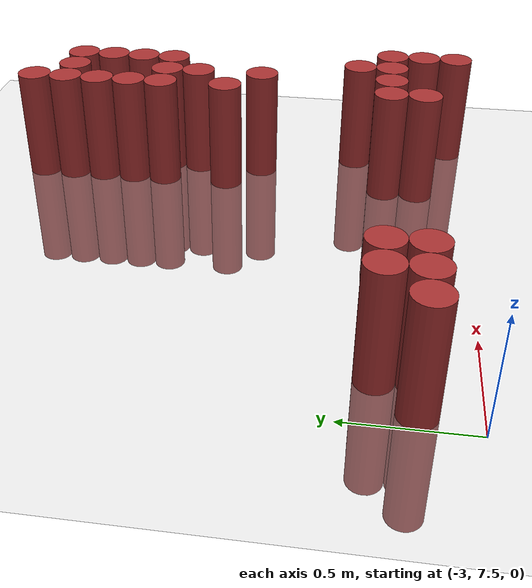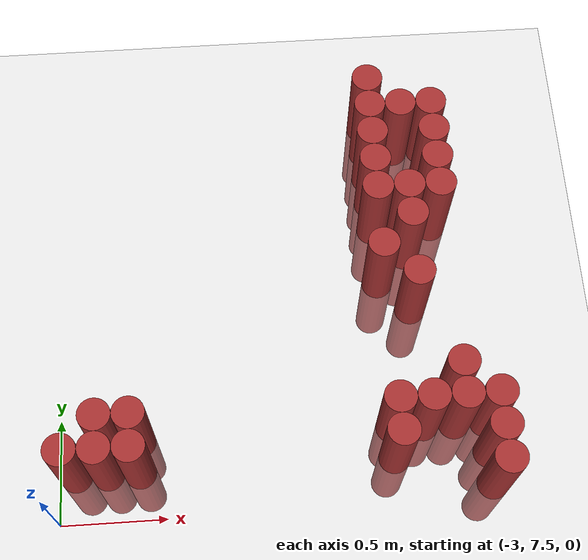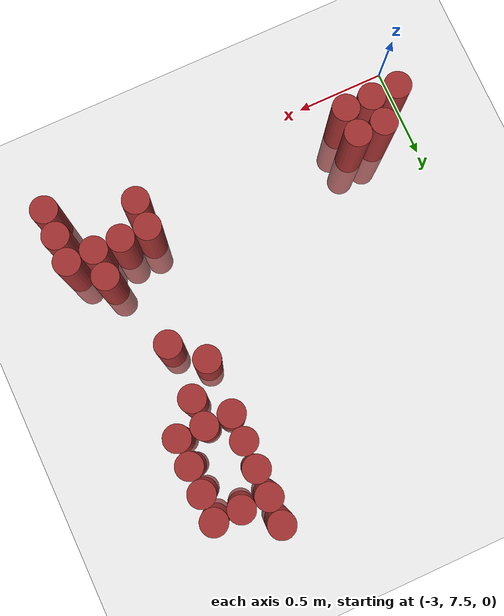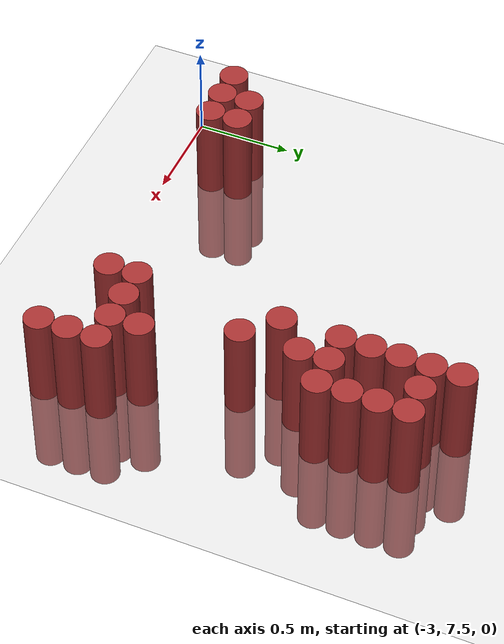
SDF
<sdf version="1.6">
 <world name="default">
  <model name="ground_plane">
   <static>1</static>
   <link name="link">
    <collision name="collision">
     <geometry><plane><normal>0 0 1</normal><size>100 100</size></plane></geometry>
     <surface><friction><ode><mu>100</mu><mu2>50</mu2></ode></friction></surface>
    </collision>
    <visual name="visual">
     <cast_shadows>0</cast_shadows>
     <geometry><plane><normal>0 0 1</normal><size>100 100</size></plane></geometry>
     <material>
      <script><uri>file://media/materials/scripts/gazebo.material</uri><name>Gazebo/Grey</name></script>
     </material>
    </visual>
   </link>
  </model>
  <model name="unit_cylinder_156">
   <static>1</static>
   <pose>-2.925000 7.725000 0.000000 0.000000 0.000000 0.000000</pose>
   <link name="link">
    <inertial>
     <mass>1</mass>
     <inertia><ixx>0.145833</ixx><ixy>0</ixy><ixz>0</ixz><iyy>0.145833</iyy><iyz>0</iyz><izz>0.125</izz></inertia>
    </inertial>
    <collision name="collision">
     <geometry><cylinder><radius>0.075000</radius><length>1</length></cylinder></geometry>
    </collision>
    <visual name="visual">
     <geometry><cylinder><radius>0.075000</radius><length>1</length></cylinder></geometry>
     <material>
      <ambient>0.648000 0.192000 0.192000 1</ambient>
      <diffuse>0.648000 0.192000 0.192000 1</diffuse>
     </material>
     <material>
      <script><name>Gazebo/Grey</name><uri>file://media/materials/scripts/gazebo.material</uri></script>
     </material>
    </visual>
   </link>
  </model>
  <model name="unit_cylinder_160">
   <static>1</static>
   <pose>-2.775000 7.725000 0.000000 0.000000 0.000000 0.000000</pose>
   <link name="link">
    <inertial>
     <mass>1</mass>
     <inertia><ixx>0.145833</ixx><ixy>0</ixy><ixz>0</ixz><iyy>0.145833</iyy><iyz>0</iyz><izz>0.125</izz></inertia>
    </inertial>
    <collision name="collision">
     <geometry><cylinder><radius>0.075000</radius><length>1</length></cylinder></geometry>
    </collision>
    <visual name="visual">
     <geometry><cylinder><radius>0.075000</radius><length>1</length></cylinder></geometry>
     <material>
      <ambient>0.648000 0.192000 0.192000 1</ambient>
      <diffuse>0.648000 0.192000 0.192000 1</diffuse>
     </material>
     <material>
      <script><name>Gazebo/Grey</name><uri>file://media/materials/scripts/gazebo.material</uri></script>
     </material>
    </visual>
   </link>
  </model>
  <model name="unit_cylinder_161">
   <static>1</static>
   <pose>-2.775000 7.875000 0.000000 0.000000 0.000000 0.000000</pose>
   <link name="link">
    <inertial>
     <mass>1</mass>
     <inertia><ixx>0.145833</ixx><ixy>0</ixy><ixz>0</ixz><iyy>0.145833</iyy><iyz>0</iyz><izz>0.125</izz></inertia>
    </inertial>
    <collision name="collision">
     <geometry><cylinder><radius>0.075000</radius><length>1</length></cylinder></geometry>
    </collision>
    <visual name="visual">
     <geometry><cylinder><radius>0.075000</radius><length>1</length></cylinder></geometry>
     <material>
      <ambient>0.648000 0.192000 0.192000 1</ambient>
      <diffuse>0.648000 0.192000 0.192000 1</diffuse>
     </material>
     <material>
      <script><name>Gazebo/Grey</name><uri>file://media/materials/scripts/gazebo.material</uri></script>
     </material>
    </visual>
   </link>
  </model>
  <model name="unit_cylinder_168">
   <static>1</static>
   <pose>-2.625000 7.725000 0.000000 0.000000 0.000000 0.000000</pose>
   <link name="link">
    <inertial>
     <mass>1</mass>
     <inertia><ixx>0.145833</ixx><ixy>0</ixy><ixz>0</ixz><iyy>0.145833</iyy><iyz>0</iyz><izz>0.125</izz></inertia>
    </inertial>
    <collision name="collision">
     <geometry><cylinder><radius>0.075000</radius><length>1</length></cylinder></geometry>
    </collision>
    <visual name="visual">
     <geometry><cylinder><radius>0.075000</radius><length>1</length></cylinder></geometry>
     <material>
      <ambient>0.648000 0.192000 0.192000 1</ambient>
      <diffuse>0.648000 0.192000 0.192000 1</diffuse>
     </material>
     <material>
      <script><name>Gazebo/Grey</name><uri>file://media/materials/scripts/gazebo.material</uri></script>
     </material>
    </visual>
   </link>
  </model>
  <model name="unit_cylinder_169">
   <static>1</static>
   <pose>-2.625000 7.875000 0.000000 0.000000 0.000000 0.000000</pose>
   <link name="link">
    <inertial>
     <mass>1</mass>
     <inertia><ixx>0.145833</ixx><ixy>0</ixy><ixz>0</ixz><iyy>0.145833</iyy><iyz>0</iyz><izz>0.125</izz></inertia>
    </inertial>
    <collision name="collision">
     <geometry><cylinder><radius>0.075000</radius><length>1</length></cylinder></geometry>
    </collision>
    <visual name="visual">
     <geometry><cylinder><radius>0.075000</radius><length>1</length></cylinder></geometry>
     <material>
      <ambient>0.648000 0.192000 0.192000 1</ambient>
      <diffuse>0.648000 0.192000 0.192000 1</diffuse>
     </material>
     <material>
      <script><name>Gazebo/Grey</name><uri>file://media/materials/scripts/gazebo.material</uri></script>
     </material>
    </visual>
   </link>
  </model>
  <model name="unit_cylinder_185">
   <static>1</static>
   <pose>-1.425000 7.725000 0.000000 0.000000 0.000000 0.000000</pose>
   <link name="link">
    <inertial>
     <mass>1</mass>
     <inertia><ixx>0.145833</ixx><ixy>0</ixy><ixz>0</ixz><iyy>0.145833</iyy><iyz>0</iyz><izz>0.125</izz></inertia>
    </inertial>
    <collision name="collision">
     <geometry><cylinder><radius>0.075000</radius><length>1</length></cylinder></geometry>
    </collision>
    <visual name="visual">
     <geometry><cylinder><radius>0.075000</radius><length>1</length></cylinder></geometry>
     <material>
      <ambient>0.648000 0.192000 0.192000 1</ambient>
      <diffuse>0.648000 0.192000 0.192000 1</diffuse>
     </material>
     <material>
      <script><name>Gazebo/Grey</name><uri>file://media/materials/scripts/gazebo.material</uri></script>
     </material>
    </visual>
   </link>
  </model>
  <model name="unit_cylinder_186">
   <static>1</static>
   <pose>-1.425000 7.875000 0.000000 0.000000 0.000000 0.000000</pose>
   <link name="link">
    <inertial>
     <mass>1</mass>
     <inertia><ixx>0.145833</ixx><ixy>0</ixy><ixz>0</ixz><iyy>0.145833</iyy><iyz>0</iyz><izz>0.125</izz></inertia>
    </inertial>
    <collision name="collision">
     <geometry><cylinder><radius>0.075000</radius><length>1</length></cylinder></geometry>
    </collision>
    <visual name="visual">
     <geometry><cylinder><radius>0.075000</radius><length>1</length></cylinder></geometry>
     <material>
      <ambient>0.648000 0.192000 0.192000 1</ambient>
      <diffuse>0.648000 0.192000 0.192000 1</diffuse>
     </material>
     <material>
      <script><name>Gazebo/Grey</name><uri>file://media/materials/scripts/gazebo.material</uri></script>
     </material>
    </visual>
   </link>
  </model>
  <model name="unit_cylinder_187">
   <static>1</static>
   <pose>-1.425000 8.625000 0.000000 0.000000 0.000000 0.000000</pose>
   <link name="link">
    <inertial>
     <mass>1</mass>
     <inertia><ixx>0.145833</ixx><ixy>0</ixy><ixz>0</ixz><iyy>0.145833</iyy><iyz>0</iyz><izz>0.125</izz></inertia>
    </inertial>
    <collision name="collision">
     <geometry><cylinder><radius>0.075000</radius><length>1</length></cylinder></geometry>
    </collision>
    <visual name="visual">
     <geometry><cylinder><radius>0.075000</radius><length>1</length></cylinder></geometry>
     <material>
      <ambient>0.648000 0.192000 0.192000 1</ambient>
      <diffuse>0.648000 0.192000 0.192000 1</diffuse>
     </material>
     <material>
      <script><name>Gazebo/Grey</name><uri>file://media/materials/scripts/gazebo.material</uri></script>
     </material>
    </visual>
   </link>
  </model>
  <model name="unit_cylinder_188">
   <static>1</static>
   <pose>-1.425000 8.925000 0.000000 0.000000 0.000000 0.000000</pose>
   <link name="link">
    <inertial>
     <mass>1</mass>
     <inertia><ixx>0.145833</ixx><ixy>0</ixy><ixz>0</ixz><iyy>0.145833</iyy><iyz>0</iyz><izz>0.125</izz></inertia>
    </inertial>
    <collision name="collision">
     <geometry><cylinder><radius>0.075000</radius><length>1</length></cylinder></geometry>
    </collision>
    <visual name="visual">
     <geometry><cylinder><radius>0.075000</radius><length>1</length></cylinder></geometry>
     <material>
      <ambient>0.648000 0.192000 0.192000 1</ambient>
      <diffuse>0.648000 0.192000 0.192000 1</diffuse>
     </material>
     <material>
      <script><name>Gazebo/Grey</name><uri>file://media/materials/scripts/gazebo.material</uri></script>
     </material>
    </visual>
   </link>
  </model>
  <model name="unit_cylinder_189">
   <static>1</static>
   <pose>-1.425000 9.075000 0.000000 0.000000 0.000000 0.000000</pose>
   <link name="link">
    <inertial>
     <mass>1</mass>
     <inertia><ixx>0.145833</ixx><ixy>0</ixy><ixz>0</ixz><iyy>0.145833</iyy><iyz>0</iyz><izz>0.125</izz></inertia>
    </inertial>
    <collision name="collision">
     <geometry><cylinder><radius>0.075000</radius><length>1</length></cylinder></geometry>
    </collision>
    <visual name="visual">
     <geometry><cylinder><radius>0.075000</radius><length>1</length></cylinder></geometry>
     <material>
      <ambient>0.648000 0.192000 0.192000 1</ambient>
      <diffuse>0.648000 0.192000 0.192000 1</diffuse>
     </material>
     <material>
      <script><name>Gazebo/Grey</name><uri>file://media/materials/scripts/gazebo.material</uri></script>
     </material>
    </visual>
   </link>
  </model>
  <model name="unit_cylinder_190">
   <static>1</static>
   <pose>-1.425000 9.225000 0.000000 0.000000 0.000000 0.000000</pose>
   <link name="link">
    <inertial>
     <mass>1</mass>
     <inertia><ixx>0.145833</ixx><ixy>0</ixy><ixz>0</ixz><iyy>0.145833</iyy><iyz>0</iyz><izz>0.125</izz></inertia>
    </inertial>
    <collision name="collision">
     <geometry><cylinder><radius>0.075000</radius><length>1</length></cylinder></geometry>
    </collision>
    <visual name="visual">
     <geometry><cylinder><radius>0.075000</radius><length>1</length></cylinder></geometry>
     <material>
      <ambient>0.648000 0.192000 0.192000 1</ambient>
      <diffuse>0.648000 0.192000 0.192000 1</diffuse>
     </material>
     <material>
      <script><name>Gazebo/Grey</name><uri>file://media/materials/scripts/gazebo.material</uri></script>
     </material>
    </visual>
   </link>
  </model>
  <model name="unit_cylinder_191">
   <static>1</static>
   <pose>-1.425000 9.375000 0.000000 0.000000 0.000000 0.000000</pose>
   <link name="link">
    <inertial>
     <mass>1</mass>
     <inertia><ixx>0.145833</ixx><ixy>0</ixy><ixz>0</ixz><iyy>0.145833</iyy><iyz>0</iyz><izz>0.125</izz></inertia>
    </inertial>
    <collision name="collision">
     <geometry><cylinder><radius>0.075000</radius><length>1</length></cylinder></geometry>
    </collision>
    <visual name="visual">
     <geometry><cylinder><radius>0.075000</radius><length>1</length></cylinder></geometry>
     <material>
      <ambient>0.648000 0.192000 0.192000 1</ambient>
      <diffuse>0.648000 0.192000 0.192000 1</diffuse>
     </material>
     <material>
      <script><name>Gazebo/Grey</name><uri>file://media/materials/scripts/gazebo.material</uri></script>
     </material>
    </visual>
   </link>
  </model>
  <model name="unit_cylinder_192">
   <static>1</static>
   <pose>-1.425000 9.525000 0.000000 0.000000 0.000000 0.000000</pose>
   <link name="link">
    <inertial>
     <mass>1</mass>
     <inertia><ixx>0.145833</ixx><ixy>0</ixy><ixz>0</ixz><iyy>0.145833</iyy><iyz>0</iyz><izz>0.125</izz></inertia>
    </inertial>
    <collision name="collision">
     <geometry><cylinder><radius>0.075000</radius><length>1</length></cylinder></geometry>
    </collision>
    <visual name="visual">
     <geometry><cylinder><radius>0.075000</radius><length>1</length></cylinder></geometry>
     <material>
      <ambient>0.648000 0.192000 0.192000 1</ambient>
      <diffuse>0.648000 0.192000 0.192000 1</diffuse>
     </material>
     <material>
      <script><name>Gazebo/Grey</name><uri>file://media/materials/scripts/gazebo.material</uri></script>
     </material>
    </visual>
   </link>
  </model>
  <model name="unit_cylinder_195">
   <static>1</static>
   <pose>-1.275000 7.875000 0.000000 0.000000 0.000000 0.000000</pose>
   <link name="link">
    <inertial>
     <mass>1</mass>
     <inertia><ixx>0.145833</ixx><ixy>0</ixy><ixz>0</ixz><iyy>0.145833</iyy><iyz>0</iyz><izz>0.125</izz></inertia>
    </inertial>
    <collision name="collision">
     <geometry><cylinder><radius>0.075000</radius><length>1</length></cylinder></geometry>
    </collision>
    <visual name="visual">
     <geometry><cylinder><radius>0.075000</radius><length>1</length></cylinder></geometry>
     <material>
      <ambient>0.648000 0.192000 0.192000 1</ambient>
      <diffuse>0.648000 0.192000 0.192000 1</diffuse>
     </material>
     <material>
      <script><name>Gazebo/Grey</name><uri>file://media/materials/scripts/gazebo.material</uri></script>
     </material>
    </visual>
   </link>
  </model>
  <model name="unit_cylinder_196">
   <static>1</static>
   <pose>-1.275000 8.475000 0.000000 0.000000 0.000000 0.000000</pose>
   <link name="link">
    <inertial>
     <mass>1</mass>
     <inertia><ixx>0.145833</ixx><ixy>0</ixy><ixz>0</ixz><iyy>0.145833</iyy><iyz>0</iyz><izz>0.125</izz></inertia>
    </inertial>
    <collision name="collision">
     <geometry><cylinder><radius>0.075000</radius><length>1</length></cylinder></geometry>
    </collision>
    <visual name="visual">
     <geometry><cylinder><radius>0.075000</radius><length>1</length></cylinder></geometry>
     <material>
      <ambient>0.648000 0.192000 0.192000 1</ambient>
      <diffuse>0.648000 0.192000 0.192000 1</diffuse>
     </material>
     <material>
      <script><name>Gazebo/Grey</name><uri>file://media/materials/scripts/gazebo.material</uri></script>
     </material>
    </visual>
   </link>
  </model>
  <model name="unit_cylinder_197">
   <static>1</static>
   <pose>-1.275000 8.775000 0.000000 0.000000 0.000000 0.000000</pose>
   <link name="link">
    <inertial>
     <mass>1</mass>
     <inertia><ixx>0.145833</ixx><ixy>0</ixy><ixz>0</ixz><iyy>0.145833</iyy><iyz>0</iyz><izz>0.125</izz></inertia>
    </inertial>
    <collision name="collision">
     <geometry><cylinder><radius>0.075000</radius><length>1</length></cylinder></geometry>
    </collision>
    <visual name="visual">
     <geometry><cylinder><radius>0.075000</radius><length>1</length></cylinder></geometry>
     <material>
      <ambient>0.648000 0.192000 0.192000 1</ambient>
      <diffuse>0.648000 0.192000 0.192000 1</diffuse>
     </material>
     <material>
      <script><name>Gazebo/Grey</name><uri>file://media/materials/scripts/gazebo.material</uri></script>
     </material>
    </visual>
   </link>
  </model>
  <model name="unit_cylinder_198">
   <static>1</static>
   <pose>-1.275000 8.925000 0.000000 0.000000 0.000000 0.000000</pose>
   <link name="link">
    <inertial>
     <mass>1</mass>
     <inertia><ixx>0.145833</ixx><ixy>0</ixy><ixz>0</ixz><iyy>0.145833</iyy><iyz>0</iyz><izz>0.125</izz></inertia>
    </inertial>
    <collision name="collision">
     <geometry><cylinder><radius>0.075000</radius><length>1</length></cylinder></geometry>
    </collision>
    <visual name="visual">
     <geometry><cylinder><radius>0.075000</radius><length>1</length></cylinder></geometry>
     <material>
      <ambient>0.648000 0.192000 0.192000 1</ambient>
      <diffuse>0.648000 0.192000 0.192000 1</diffuse>
     </material>
     <material>
      <script><name>Gazebo/Grey</name><uri>file://media/materials/scripts/gazebo.material</uri></script>
     </material>
    </visual>
   </link>
  </model>
  <model name="unit_cylinder_199">
   <static>1</static>
   <pose>-1.275000 9.375000 0.000000 0.000000 0.000000 0.000000</pose>
   <link name="link">
    <inertial>
     <mass>1</mass>
     <inertia><ixx>0.145833</ixx><ixy>0</ixy><ixz>0</ixz><iyy>0.145833</iyy><iyz>0</iyz><izz>0.125</izz></inertia>
    </inertial>
    <collision name="collision">
     <geometry><cylinder><radius>0.075000</radius><length>1</length></cylinder></geometry>
    </collision>
    <visual name="visual">
     <geometry><cylinder><radius>0.075000</radius><length>1</length></cylinder></geometry>
     <material>
      <ambient>0.648000 0.192000 0.192000 1</ambient>
      <diffuse>0.648000 0.192000 0.192000 1</diffuse>
     </material>
     <material>
      <script><name>Gazebo/Grey</name><uri>file://media/materials/scripts/gazebo.material</uri></script>
     </material>
    </visual>
   </link>
  </model>
  <model name="unit_cylinder_206">
   <static>1</static>
   <pose>-1.125000 7.875000 0.000000 0.000000 0.000000 0.000000</pose>
   <link name="link">
    <inertial>
     <mass>1</mass>
     <inertia><ixx>0.145833</ixx><ixy>0</ixy><ixz>0</ixz><iyy>0.145833</iyy><iyz>0</iyz><izz>0.125</izz></inertia>
    </inertial>
    <collision name="collision">
     <geometry><cylinder><radius>0.075000</radius><length>1</length></cylinder></geometry>
    </collision>
    <visual name="visual">
     <geometry><cylinder><radius>0.075000</radius><length>1</length></cylinder></geometry>
     <material>
      <ambient>0.648000 0.192000 0.192000 1</ambient>
      <diffuse>0.648000 0.192000 0.192000 1</diffuse>
     </material>
     <material>
      <script><name>Gazebo/Grey</name><uri>file://media/materials/scripts/gazebo.material</uri></script>
     </material>
    </visual>
   </link>
  </model>
  <model name="unit_cylinder_207">
   <static>1</static>
   <pose>-1.125000 8.025000 0.000000 0.000000 0.000000 0.000000</pose>
   <link name="link">
    <inertial>
     <mass>1</mass>
     <inertia><ixx>0.145833</ixx><ixy>0</ixy><ixz>0</ixz><iyy>0.145833</iyy><iyz>0</iyz><izz>0.125</izz></inertia>
    </inertial>
    <collision name="collision">
     <geometry><cylinder><radius>0.075000</radius><length>1</length></cylinder></geometry>
    </collision>
    <visual name="visual">
     <geometry><cylinder><radius>0.075000</radius><length>1</length></cylinder></geometry>
     <material>
      <ambient>0.648000 0.192000 0.192000 1</ambient>
      <diffuse>0.648000 0.192000 0.192000 1</diffuse>
     </material>
     <material>
      <script><name>Gazebo/Grey</name><uri>file://media/materials/scripts/gazebo.material</uri></script>
     </material>
    </visual>
   </link>
  </model>
  <model name="unit_cylinder_208">
   <static>1</static>
   <pose>-1.125000 8.925000 0.000000 0.000000 0.000000 0.000000</pose>
   <link name="link">
    <inertial>
     <mass>1</mass>
     <inertia><ixx>0.145833</ixx><ixy>0</ixy><ixz>0</ixz><iyy>0.145833</iyy><iyz>0</iyz><izz>0.125</izz></inertia>
    </inertial>
    <collision name="collision">
     <geometry><cylinder><radius>0.075000</radius><length>1</length></cylinder></geometry>
    </collision>
    <visual name="visual">
     <geometry><cylinder><radius>0.075000</radius><length>1</length></cylinder></geometry>
     <material>
      <ambient>0.648000 0.192000 0.192000 1</ambient>
      <diffuse>0.648000 0.192000 0.192000 1</diffuse>
     </material>
     <material>
      <script><name>Gazebo/Grey</name><uri>file://media/materials/scripts/gazebo.material</uri></script>
     </material>
    </visual>
   </link>
  </model>
  <model name="unit_cylinder_209">
   <static>1</static>
   <pose>-1.125000 9.075000 0.000000 0.000000 0.000000 0.000000</pose>
   <link name="link">
    <inertial>
     <mass>1</mass>
     <inertia><ixx>0.145833</ixx><ixy>0</ixy><ixz>0</ixz><iyy>0.145833</iyy><iyz>0</iyz><izz>0.125</izz></inertia>
    </inertial>
    <collision name="collision">
     <geometry><cylinder><radius>0.075000</radius><length>1</length></cylinder></geometry>
    </collision>
    <visual name="visual">
     <geometry><cylinder><radius>0.075000</radius><length>1</length></cylinder></geometry>
     <material>
      <ambient>0.648000 0.192000 0.192000 1</ambient>
      <diffuse>0.648000 0.192000 0.192000 1</diffuse>
     </material>
     <material>
      <script><name>Gazebo/Grey</name><uri>file://media/materials/scripts/gazebo.material</uri></script>
     </material>
    </visual>
   </link>
  </model>
  <model name="unit_cylinder_210">
   <static>1</static>
   <pose>-1.125000 9.225000 0.000000 0.000000 0.000000 0.000000</pose>
   <link name="link">
    <inertial>
     <mass>1</mass>
     <inertia><ixx>0.145833</ixx><ixy>0</ixy><ixz>0</ixz><iyy>0.145833</iyy><iyz>0</iyz><izz>0.125</izz></inertia>
    </inertial>
    <collision name="collision">
     <geometry><cylinder><radius>0.075000</radius><length>1</length></cylinder></geometry>
    </collision>
    <visual name="visual">
     <geometry><cylinder><radius>0.075000</radius><length>1</length></cylinder></geometry>
     <material>
      <ambient>0.648000 0.192000 0.192000 1</ambient>
      <diffuse>0.648000 0.192000 0.192000 1</diffuse>
     </material>
     <material>
      <script><name>Gazebo/Grey</name><uri>file://media/materials/scripts/gazebo.material</uri></script>
     </material>
    </visual>
   </link>
  </model>
  <model name="unit_cylinder_211">
   <static>1</static>
   <pose>-1.125000 9.375000 0.000000 0.000000 0.000000 0.000000</pose>
   <link name="link">
    <inertial>
     <mass>1</mass>
     <inertia><ixx>0.145833</ixx><ixy>0</ixy><ixz>0</ixz><iyy>0.145833</iyy><iyz>0</iyz><izz>0.125</izz></inertia>
    </inertial>
    <collision name="collision">
     <geometry><cylinder><radius>0.075000</radius><length>1</length></cylinder></geometry>
    </collision>
    <visual name="visual">
     <geometry><cylinder><radius>0.075000</radius><length>1</length></cylinder></geometry>
     <material>
      <ambient>0.648000 0.192000 0.192000 1</ambient>
      <diffuse>0.648000 0.192000 0.192000 1</diffuse>
     </material>
     <material>
      <script><name>Gazebo/Grey</name><uri>file://media/materials/scripts/gazebo.material</uri></script>
     </material>
    </visual>
   </link>
  </model>
  <model name="unit_cylinder_215">
   <static>1</static>
   <pose>-0.975000 7.575000 0.000000 0.000000 0.000000 0.000000</pose>
   <link name="link">
    <inertial>
     <mass>1</mass>
     <inertia><ixx>0.145833</ixx><ixy>0</ixy><ixz>0</ixz><iyy>0.145833</iyy><iyz>0</iyz><izz>0.125</izz></inertia>
    </inertial>
    <collision name="collision">
     <geometry><cylinder><radius>0.075000</radius><length>1</length></cylinder></geometry>
    </collision>
    <visual name="visual">
     <geometry><cylinder><radius>0.075000</radius><length>1</length></cylinder></geometry>
     <material>
      <ambient>0.648000 0.192000 0.192000 1</ambient>
      <diffuse>0.648000 0.192000 0.192000 1</diffuse>
     </material>
     <material>
      <script><name>Gazebo/Grey</name><uri>file://media/materials/scripts/gazebo.material</uri></script>
     </material>
    </visual>
   </link>
  </model>
  <model name="unit_cylinder_216">
   <static>1</static>
   <pose>-0.975000 7.725000 0.000000 0.000000 0.000000 0.000000</pose>
   <link name="link">
    <inertial>
     <mass>1</mass>
     <inertia><ixx>0.145833</ixx><ixy>0</ixy><ixz>0</ixz><iyy>0.145833</iyy><iyz>0</iyz><izz>0.125</izz></inertia>
    </inertial>
    <collision name="collision">
     <geometry><cylinder><radius>0.075000</radius><length>1</length></cylinder></geometry>
    </collision>
    <visual name="visual">
     <geometry><cylinder><radius>0.075000</radius><length>1</length></cylinder></geometry>
     <material>
      <ambient>0.648000 0.192000 0.192000 1</ambient>
      <diffuse>0.648000 0.192000 0.192000 1</diffuse>
     </material>
     <material>
      <script><name>Gazebo/Grey</name><uri>file://media/materials/scripts/gazebo.material</uri></script>
     </material>
    </visual>
   </link>
  </model>
  <model name="unit_cylinder_217">
   <static>1</static>
   <pose>-0.975000 7.875000 0.000000 0.000000 0.000000 0.000000</pose>
   <link name="link">
    <inertial>
     <mass>1</mass>
     <inertia><ixx>0.145833</ixx><ixy>0</ixy><ixz>0</ixz><iyy>0.145833</iyy><iyz>0</iyz><izz>0.125</izz></inertia>
    </inertial>
    <collision name="collision">
     <geometry><cylinder><radius>0.075000</radius><length>1</length></cylinder></geometry>
    </collision>
    <visual name="visual">
     <geometry><cylinder><radius>0.075000</radius><length>1</length></cylinder></geometry>
     <material>
      <ambient>0.648000 0.192000 0.192000 1</ambient>
      <diffuse>0.648000 0.192000 0.192000 1</diffuse>
     </material>
     <material>
      <script><name>Gazebo/Grey</name><uri>file://media/materials/scripts/gazebo.material</uri></script>
     </material>
    </visual>
   </link>
  </model>
 </world>
</sdf>
